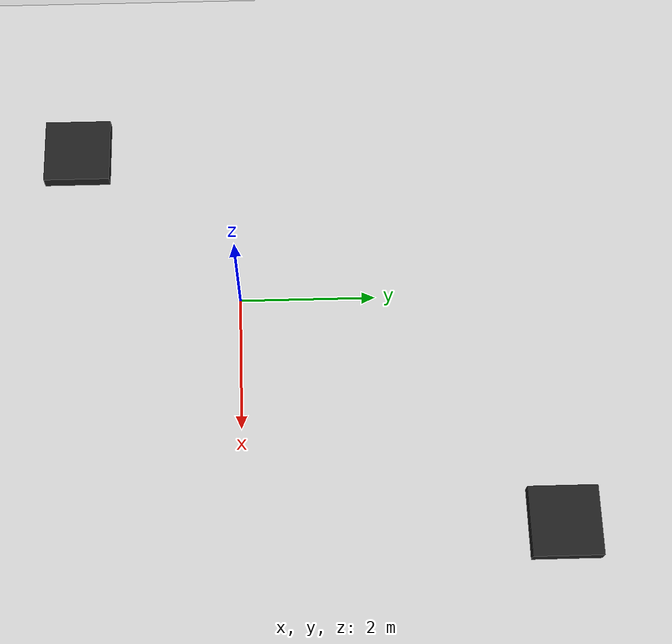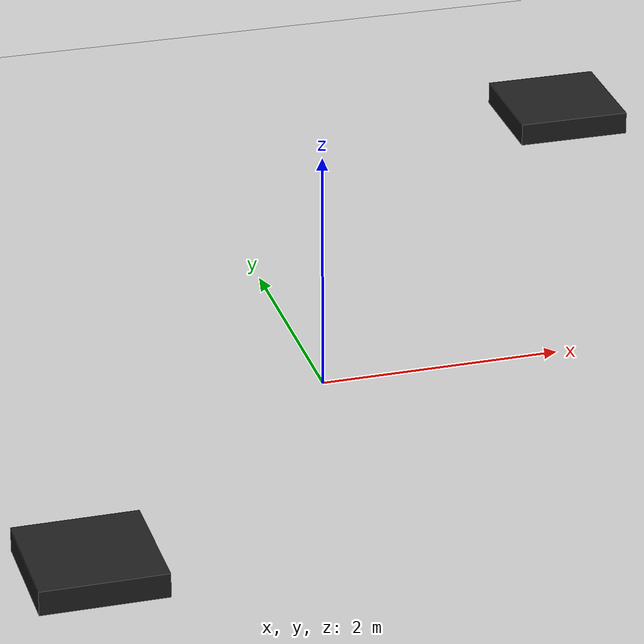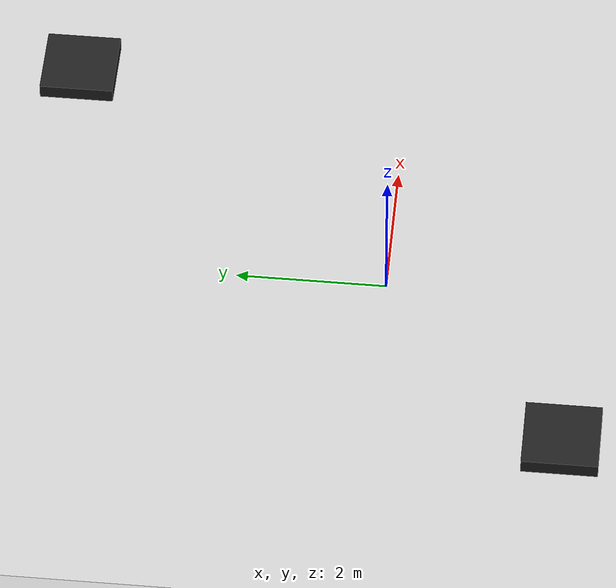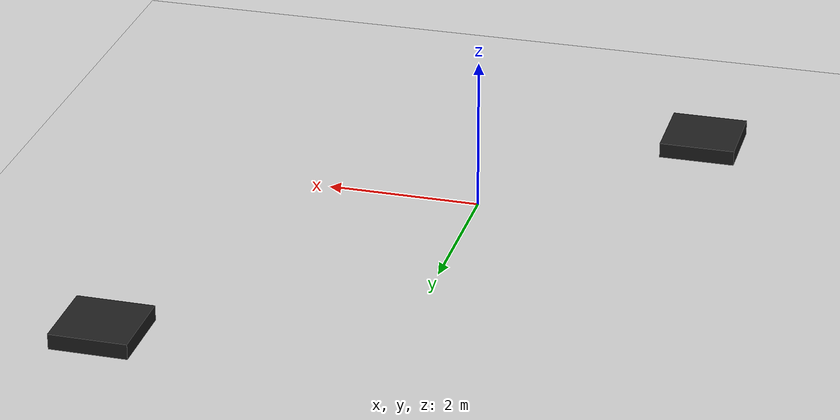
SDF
<sdf version="1.6">
 <world name="default">
  <light name="sun" type="directional">
   <pose>0 0 10 0 -0 0</pose>
   <diffuse>0.8 0.8 0.8 1</diffuse>
   <specular>0.2 0.2 0.2 1</specular>
   <attenuation>
    <range>1000</range>
    <constant>0.9</constant>
    <linear>0.01</linear>
    <quadratic>0.001</quadratic>
   </attenuation>
   <direction>-0.5 0.1 -0.9</direction>
  </light>
  <model name="ground_plane">
   <static>1</static>
   <link name="link">
    <collision name="collision">
     <geometry><plane><normal>0 0 1</normal><size>40 40</size></plane></geometry>
     <surface><friction><ode><mu>100</mu><mu2>50</mu2></ode></friction></surface>
    </collision>
    <visual name="visual">
     <geometry><plane><normal>0 0 1</normal><size>40 40</size></plane></geometry>
     <material>
      <script><uri>file://media/materials/scripts/gazebo.material</uri><name>Gazebo/Grey</name></script>
     </material>
    </visual>
    <velocity_decay><linear>0</linear><angular>0</angular></velocity_decay>
   </link>
  </model>
  <physics name="default_physics" default="0" type="ode">
   <max_step_size>0.001</max_step_size>
   <real_time_factor>1</real_time_factor>
   <real_time_update_rate>1000</real_time_update_rate>
  </physics>
  <scene>
   <ambient>0.4 0.4 0.4 1</ambient>
   <background>0.7 0.7 0.7 1</background>
   <shadows>0</shadows>
   <grid>1</grid>
  </scene>
  <gravity>0 0 -9.8</gravity>
  <magnetic_field>6e-06 2.3e-05 -4.2e-05</magnetic_field>
  <atmosphere type="adiabatic"/>
  <spherical_coordinates>
   <surface_model>EARTH_WGS84</surface_model>
   <latitude_deg>0</latitude_deg>
   <longitude_deg>0</longitude_deg>
   <elevation>0</elevation>
   <heading_deg>0</heading_deg>
  </spherical_coordinates>
  <model name="unit_box_0_0">
   <link name="link">
    <pose>5 8 0 0 -0 0</pose>
    <inertial>
     <mass>1</mass>
     <inertia>
      <ixx>0.166667</ixx>
      <ixy>0</ixy>
      <ixz>0</ixz>
      <iyy>0.166667</iyy>
      <iyz>0</iyz>
      <izz>0.166667</izz>
     </inertia>
    </inertial>
    <visual name="visual">
     <geometry><box><size>1 1 0.2</size></box></geometry>
     <material>
      <script><name>Gazebo/Black</name><uri>file://media/materials/scripts/gazebo.material</uri></script>
      <ambient>0 0 0 1</ambient>
      <diffuse>0 0 0 1</diffuse>
      <specular>0.01 0.01 0.01 1</specular>
      <emissive>0 0 0 1</emissive>
      <shader type="vertex"><normal_map>__default__</normal_map></shader>
     </material>
     <pose>0 0 -0.4 0 -0 0</pose>
    </visual>
    <collision name="collision">
     <geometry><box><size>1 1 1</size></box></geometry>
     <surface>
      <friction>
       <ode><mu>1</mu><mu2>1</mu2><fdir1>0 0 0</fdir1><slip1>0</slip1><slip2>0</slip2></ode>
       <torsional>
        <coefficient>1</coefficient>
        <patch_radius>0</patch_radius>
        <surface_radius>0</surface_radius>
        <use_patch_radius>1</use_patch_radius>
        <ode><slip>0</slip></ode>
       </torsional>
      </friction>
      <bounce><restitution_coefficient>0</restitution_coefficient><threshold>1e+06</threshold></bounce>
      <contact>
       <collide_without_contact>0</collide_without_contact>
       <collide_without_contact_bitmask>1</collide_without_contact_bitmask>
       <collide_bitmask>1</collide_bitmask>
       <ode>
        <soft_cfm>0</soft_cfm>
        <soft_erp>0.2</soft_erp>
        <kp>1e+13</kp>
        <kd>1</kd>
        <max_vel>0.01</max_vel>
        <min_depth>0</min_depth>
       </ode>
       <bullet>
        <split_impulse>1</split_impulse>
        <split_impulse_penetration_threshold>-0.01</split_impulse_penetration_threshold>
        <soft_cfm>0</soft_cfm>
        <soft_erp>0.2</soft_erp>
        <kp>1e+13</kp>
        <kd>1</kd>
       </bullet>
      </contact>
     </surface>
    </collision>
   </link>
   <static>0</static>
   <pose>-1.49674 -3.48233 0.5 0 -0 0</pose>
  </model>
  <model name="unit_box_3_0_0">
   <link name="link_0">
    <pose>-2.51151 -10.1647 0.5 0 -0 0</pose>
    <inertial>
     <mass>1</mass>
     <inertia>
      <ixx>0.166667</ixx>
      <ixy>0</ixy>
      <ixz>0</ixz>
      <iyy>0.166667</iyy>
      <iyz>0</iyz>
      <izz>0.166667</izz>
     </inertia>
    </inertial>
    <visual name="visual">
     <pose>-4.5 2.5 -0.4 0 -0 0</pose>
     <geometry><box><size>1 1 0.2</size></box></geometry>
     <material>
      <lighting>1</lighting>
      <script><uri>file://media/materials/scripts/gazebo.material</uri><name>Gazebo/Black</name></script>
      <ambient>0 0 0 1</ambient>
      <diffuse>0 0 0 1</diffuse>
      <specular>0.01 0.01 0.01 1</specular>
      <emissive>0 0 0 1</emissive>
      <shader type="vertex"><normal_map>__default__</normal_map></shader>
     </material>
    </visual>
    <collision name="collision">
     <geometry><box><size>1 1 1</size></box></geometry>
     <surface>
      <friction>
       <ode><mu>1</mu><mu2>1</mu2><fdir1>0 0 0</fdir1><slip1>0</slip1><slip2>0</slip2></ode>
       <torsional>
        <coefficient>1</coefficient>
        <patch_radius>0</patch_radius>
        <surface_radius>0</surface_radius>
        <use_patch_radius>1</use_patch_radius>
        <ode><slip>0</slip></ode>
       </torsional>
      </friction>
      <bounce><restitution_coefficient>0</restitution_coefficient><threshold>1e+06</threshold></bounce>
      <contact>
       <collide_without_contact>0</collide_without_contact>
       <collide_without_contact_bitmask>1</collide_without_contact_bitmask>
       <collide_bitmask>1</collide_bitmask>
       <ode>
        <soft_cfm>0</soft_cfm>
        <soft_erp>0.2</soft_erp>
        <kp>1e+13</kp>
        <kd>1</kd>
        <max_vel>0.01</max_vel>
        <min_depth>0</min_depth>
       </ode>
       <bullet>
        <split_impulse>1</split_impulse>
        <split_impulse_penetration_threshold>-0.01</split_impulse_penetration_threshold>
        <soft_cfm>0</soft_cfm>
        <soft_erp>0.2</soft_erp>
        <kp>1e+13</kp>
        <kd>1</kd>
       </bullet>
      </contact>
     </surface>
    </collision>
   </link>
   <static>0</static>
   <pose>4.51151 5.16469 0 0 -0 0</pose>
  </model>
 </world>
</sdf>
